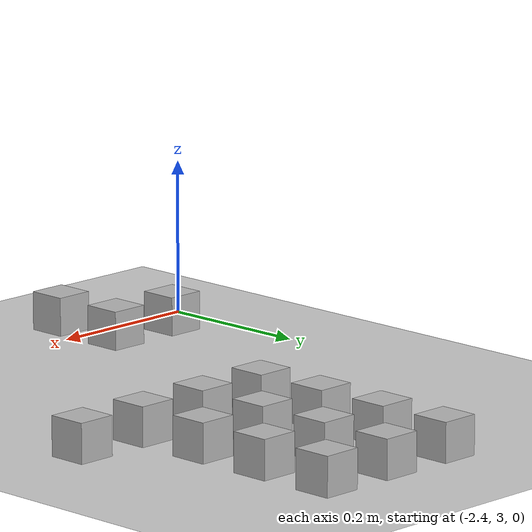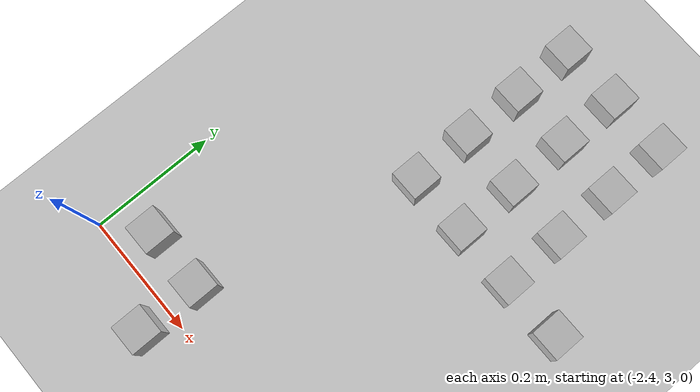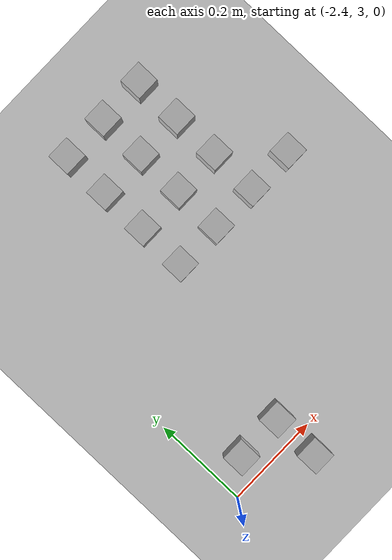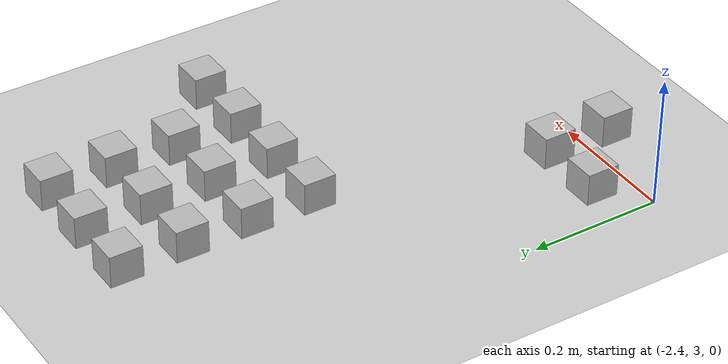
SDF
<sdf version="1.6">
 <world name="default">
  <model name="ground_plane">
   <static>1</static>
   <link name="link">
    <collision name="collision">
     <geometry><plane><normal>0 0 1</normal><size>100 100</size></plane></geometry>
     <surface><friction><ode><mu>100</mu><mu2>50</mu2></ode></friction></surface>
    </collision>
    <visual name="visual">
     <cast_shadows>0</cast_shadows>
     <geometry><plane><normal>0 0 1</normal><size>100 100</size></plane></geometry>
     <material>
      <script><uri>file://media/materials/scripts/gazebo.material</uri><name>Gazebo/Grey</name></script>
     </material>
    </visual>
   </link>
  </model>
  <model name="at32">
   <static>0</static>
   <link name="link">
    <inertial>
     <mass>0.01</mass>
     <inertia><ixx>4e-05</ixx><ixy>0</ixy><ixz>0</ixz><iyy>4e-05</iyy><iyz>0</iyz><izz>4e-05</izz></inertia>
    </inertial>
    <visual name="visual">
     <geometry><box><size>0.05 0.05 0.05</size></box></geometry>
     <material>
      <script>
       <uri>model://at0/materials/scripts</uri>
       <uri>model://at0/materials/textures</uri>
       <name>at0/Diffuse</name>
      </script>
     </material>
    </visual>
    <collision name="collision">
     <geometry><box><size>0.05 0.05 0.05</size></box></geometry>
     <surface><friction><ode><mu>0.8</mu><mu2>0.7</mu2></ode></friction></surface>
    </collision>
   </link>
   <pose>-2.14382 3.39828 0.025 0 -0 0</pose>
  </model>
  <model name="at33">
   <static>0</static>
   <link name="link">
    <inertial>
     <mass>0.01</mass>
     <inertia><ixx>4e-05</ixx><ixy>0</ixy><ixz>0</ixz><iyy>4e-05</iyy><iyz>0</iyz><izz>4e-05</izz></inertia>
    </inertial>
    <visual name="visual">
     <geometry><box><size>0.05 0.05 0.05</size></box></geometry>
     <material>
      <script>
       <uri>model://at0/materials/scripts</uri>
       <uri>model://at0/materials/textures</uri>
       <name>at0/Diffuse</name>
      </script>
     </material>
    </visual>
    <collision name="collision">
     <geometry><box><size>0.05 0.05 0.05</size></box></geometry>
     <surface><friction><ode><mu>0.8</mu><mu2>0.7</mu2></ode></friction></surface>
    </collision>
   </link>
   <pose>-2.04382 3.39828 0.025 0 -0 0</pose>
  </model>
  <model name="at34">
   <static>0</static>
   <link name="link">
    <inertial>
     <mass>0.01</mass>
     <inertia><ixx>4e-05</ixx><ixy>0</ixy><ixz>0</ixz><iyy>4e-05</iyy><iyz>0</iyz><izz>4e-05</izz></inertia>
    </inertial>
    <visual name="visual">
     <geometry><box><size>0.05 0.05 0.05</size></box></geometry>
     <material>
      <script>
       <uri>model://at0/materials/scripts</uri>
       <uri>model://at0/materials/textures</uri>
       <name>at0/Diffuse</name>
      </script>
     </material>
    </visual>
    <collision name="collision">
     <geometry><box><size>0.05 0.05 0.05</size></box></geometry>
     <surface><friction><ode><mu>0.8</mu><mu2>0.7</mu2></ode></friction></surface>
    </collision>
   </link>
   <pose>-1.94382 3.39828 0.025 0 -0 0</pose>
  </model>
  <model name="at35">
   <static>0</static>
   <link name="link">
    <inertial>
     <mass>0.01</mass>
     <inertia><ixx>4e-05</ixx><ixy>0</ixy><ixz>0</ixz><iyy>4e-05</iyy><iyz>0</iyz><izz>4e-05</izz></inertia>
    </inertial>
    <visual name="visual">
     <geometry><box><size>0.05 0.05 0.05</size></box></geometry>
     <material>
      <script>
       <uri>model://at0/materials/scripts</uri>
       <uri>model://at0/materials/textures</uri>
       <name>at0/Diffuse</name>
      </script>
     </material>
    </visual>
    <collision name="collision">
     <geometry><box><size>0.05 0.05 0.05</size></box></geometry>
     <surface><friction><ode><mu>0.8</mu><mu2>0.7</mu2></ode></friction></surface>
    </collision>
   </link>
   <pose>-1.84382 3.39828 0.025 0 -0 0</pose>
  </model>
  <model name="at36">
   <static>0</static>
   <link name="link">
    <inertial>
     <mass>0.01</mass>
     <inertia><ixx>4e-05</ixx><ixy>0</ixy><ixz>0</ixz><iyy>4e-05</iyy><iyz>0</iyz><izz>4e-05</izz></inertia>
    </inertial>
    <visual name="visual">
     <geometry><box><size>0.05 0.05 0.05</size></box></geometry>
     <material>
      <script>
       <uri>model://at0/materials/scripts</uri>
       <uri>model://at0/materials/textures</uri>
       <name>at0/Diffuse</name>
      </script>
     </material>
    </visual>
    <collision name="collision">
     <geometry><box><size>0.05 0.05 0.05</size></box></geometry>
     <surface><friction><ode><mu>0.8</mu><mu2>0.7</mu2></ode></friction></surface>
    </collision>
   </link>
   <pose>-2.14382 3.49828 0.025 0 -0 0</pose>
  </model>
  <model name="at37">
   <static>0</static>
   <link name="link">
    <inertial>
     <mass>0.01</mass>
     <inertia><ixx>4e-05</ixx><ixy>0</ixy><ixz>0</ixz><iyy>4e-05</iyy><iyz>0</iyz><izz>4e-05</izz></inertia>
    </inertial>
    <visual name="visual">
     <geometry><box><size>0.05 0.05 0.05</size></box></geometry>
     <material>
      <script>
       <uri>model://at0/materials/scripts</uri>
       <uri>model://at0/materials/textures</uri>
       <name>at0/Diffuse</name>
      </script>
     </material>
    </visual>
    <collision name="collision">
     <geometry><box><size>0.05 0.05 0.05</size></box></geometry>
     <surface><friction><ode><mu>0.8</mu><mu2>0.7</mu2></ode></friction></surface>
    </collision>
   </link>
   <pose>-2.04382 3.49828 0.025 0 -0 0</pose>
  </model>
  <model name="at38">
   <static>0</static>
   <link name="link">
    <inertial>
     <mass>0.01</mass>
     <inertia><ixx>4e-05</ixx><ixy>0</ixy><ixz>0</ixz><iyy>4e-05</iyy><iyz>0</iyz><izz>4e-05</izz></inertia>
    </inertial>
    <visual name="visual">
     <geometry><box><size>0.05 0.05 0.05</size></box></geometry>
     <material>
      <script>
       <uri>model://at0/materials/scripts</uri>
       <uri>model://at0/materials/textures</uri>
       <name>at0/Diffuse</name>
      </script>
     </material>
    </visual>
    <collision name="collision">
     <geometry><box><size>0.05 0.05 0.05</size></box></geometry>
     <surface><friction><ode><mu>0.8</mu><mu2>0.7</mu2></ode></friction></surface>
    </collision>
   </link>
   <pose>-1.94382 3.49828 0.025 0 -0 0</pose>
  </model>
  <model name="at40">
   <static>0</static>
   <link name="link">
    <inertial>
     <mass>0.01</mass>
     <inertia><ixx>4e-05</ixx><ixy>0</ixy><ixz>0</ixz><iyy>4e-05</iyy><iyz>0</iyz><izz>4e-05</izz></inertia>
    </inertial>
    <visual name="visual">
     <geometry><box><size>0.05 0.05 0.05</size></box></geometry>
     <material>
      <script>
       <uri>model://at0/materials/scripts</uri>
       <uri>model://at0/materials/textures</uri>
       <name>at0/Diffuse</name>
      </script>
     </material>
    </visual>
    <collision name="collision">
     <geometry><box><size>0.05 0.05 0.05</size></box></geometry>
     <surface><friction><ode><mu>0.8</mu><mu2>0.7</mu2></ode></friction></surface>
    </collision>
   </link>
   <pose>-2.14382 3.59828 0.025 0 -0 0</pose>
  </model>
  <model name="at41">
   <static>0</static>
   <link name="link">
    <inertial>
     <mass>0.01</mass>
     <inertia><ixx>4e-05</ixx><ixy>0</ixy><ixz>0</ixz><iyy>4e-05</iyy><iyz>0</iyz><izz>4e-05</izz></inertia>
    </inertial>
    <visual name="visual">
     <geometry><box><size>0.05 0.05 0.05</size></box></geometry>
     <material>
      <script>
       <uri>model://at0/materials/scripts</uri>
       <uri>model://at0/materials/textures</uri>
       <name>at0/Diffuse</name>
      </script>
     </material>
    </visual>
    <collision name="collision">
     <geometry><box><size>0.05 0.05 0.05</size></box></geometry>
     <surface><friction><ode><mu>0.8</mu><mu2>0.7</mu2></ode></friction></surface>
    </collision>
   </link>
   <pose>-2.04382 3.59828 0.025 0 -0 0</pose>
  </model>
  <model name="at42">
   <static>0</static>
   <link name="link">
    <inertial>
     <mass>0.01</mass>
     <inertia><ixx>4e-05</ixx><ixy>0</ixy><ixz>0</ixz><iyy>4e-05</iyy><iyz>0</iyz><izz>4e-05</izz></inertia>
    </inertial>
    <visual name="visual">
     <geometry><box><size>0.05 0.05 0.05</size></box></geometry>
     <material>
      <script>
       <uri>model://at0/materials/scripts</uri>
       <uri>model://at0/materials/textures</uri>
       <name>at0/Diffuse</name>
      </script>
     </material>
    </visual>
    <collision name="collision">
     <geometry><box><size>0.05 0.05 0.05</size></box></geometry>
     <surface><friction><ode><mu>0.8</mu><mu2>0.7</mu2></ode></friction></surface>
    </collision>
   </link>
   <pose>-1.94382 3.59828 0.025 0 -0 0</pose>
  </model>
  <model name="at44">
   <static>0</static>
   <link name="link">
    <inertial>
     <mass>0.01</mass>
     <inertia><ixx>4e-05</ixx><ixy>0</ixy><ixz>0</ixz><iyy>4e-05</iyy><iyz>0</iyz><izz>4e-05</izz></inertia>
    </inertial>
    <visual name="visual">
     <geometry><box><size>0.05 0.05 0.05</size></box></geometry>
     <material>
      <script>
       <uri>model://at0/materials/scripts</uri>
       <uri>model://at0/materials/textures</uri>
       <name>at0/Diffuse</name>
      </script>
     </material>
    </visual>
    <collision name="collision">
     <geometry><box><size>0.05 0.05 0.05</size></box></geometry>
     <surface><friction><ode><mu>0.8</mu><mu2>0.7</mu2></ode></friction></surface>
    </collision>
   </link>
   <pose>-2.14382 3.69828 0.025 0 -0 0</pose>
  </model>
  <model name="at45">
   <static>0</static>
   <link name="link">
    <inertial>
     <mass>0.01</mass>
     <inertia><ixx>4e-05</ixx><ixy>0</ixy><ixz>0</ixz><iyy>4e-05</iyy><iyz>0</iyz><izz>4e-05</izz></inertia>
    </inertial>
    <visual name="visual">
     <geometry><box><size>0.05 0.05 0.05</size></box></geometry>
     <material>
      <script>
       <uri>model://at0/materials/scripts</uri>
       <uri>model://at0/materials/textures</uri>
       <name>at0/Diffuse</name>
      </script>
     </material>
    </visual>
    <collision name="collision">
     <geometry><box><size>0.05 0.05 0.05</size></box></geometry>
     <surface><friction><ode><mu>0.8</mu><mu2>0.7</mu2></ode></friction></surface>
    </collision>
   </link>
   <pose>-2.04382 3.69828 0.025 0 -0 0</pose>
  </model>
  <model name="at46">
   <static>0</static>
   <link name="link">
    <inertial>
     <mass>0.01</mass>
     <inertia><ixx>4e-05</ixx><ixy>0</ixy><ixz>0</ixz><iyy>4e-05</iyy><iyz>0</iyz><izz>4e-05</izz></inertia>
    </inertial>
    <visual name="visual">
     <geometry><box><size>0.05 0.05 0.05</size></box></geometry>
     <material>
      <script>
       <uri>model://at0/materials/scripts</uri>
       <uri>model://at0/materials/textures</uri>
       <name>at0/Diffuse</name>
      </script>
     </material>
    </visual>
    <collision name="collision">
     <geometry><box><size>0.05 0.05 0.05</size></box></geometry>
     <surface><friction><ode><mu>0.8</mu><mu2>0.7</mu2></ode></friction></surface>
    </collision>
   </link>
   <pose>-1.94382 3.69828 0.025 0 -0 0</pose>
  </model>
  <model name="at81">
   <static>0</static>
   <link name="link">
    <inertial>
     <mass>0.01</mass>
     <inertia><ixx>4e-05</ixx><ixy>0</ixy><ixz>0</ixz><iyy>4e-05</iyy><iyz>0</iyz><izz>4e-05</izz></inertia>
    </inertial>
    <visual name="visual">
     <geometry><box><size>0.05 0.05 0.05</size></box></geometry>
     <material>
      <script>
       <uri>model://at0/materials/scripts</uri>
       <uri>model://at0/materials/textures</uri>
       <name>at0/Diffuse</name>
      </script>
     </material>
    </visual>
    <collision name="collision">
     <geometry><box><size>0.05 0.05 0.05</size></box></geometry>
     <surface><friction><ode><mu>0.8</mu><mu2>0.7</mu2></ode></friction></surface>
    </collision>
   </link>
   <pose>-2.23179 2.95711 0.025 0 -0 0</pose>
  </model>
  <model name="at82">
   <static>0</static>
   <link name="link">
    <inertial>
     <mass>0.01</mass>
     <inertia><ixx>4e-05</ixx><ixy>0</ixy><ixz>0</ixz><iyy>4e-05</iyy><iyz>0</iyz><izz>4e-05</izz></inertia>
    </inertial>
    <visual name="visual">
     <geometry><box><size>0.05 0.05 0.05</size></box></geometry>
     <material>
      <script>
       <uri>model://at0/materials/scripts</uri>
       <uri>model://at0/materials/textures</uri>
       <name>at0/Diffuse</name>
      </script>
     </material>
    </visual>
    <collision name="collision">
     <geometry><box><size>0.05 0.05 0.05</size></box></geometry>
     <surface><friction><ode><mu>0.8</mu><mu2>0.7</mu2></ode></friction></surface>
    </collision>
   </link>
   <pose>-2.33179 3.05711 0.025 0 -0 0</pose>
  </model>
  <model name="at83">
   <static>0</static>
   <link name="link">
    <inertial>
     <mass>0.01</mass>
     <inertia><ixx>4e-05</ixx><ixy>0</ixy><ixz>0</ixz><iyy>4e-05</iyy><iyz>0</iyz><izz>4e-05</izz></inertia>
    </inertial>
    <visual name="visual">
     <geometry><box><size>0.05 0.05 0.05</size></box></geometry>
     <material>
      <script>
       <uri>model://at0/materials/scripts</uri>
       <uri>model://at0/materials/textures</uri>
       <name>at0/Diffuse</name>
      </script>
     </material>
    </visual>
    <collision name="collision">
     <geometry><box><size>0.05 0.05 0.05</size></box></geometry>
     <surface><friction><ode><mu>0.8</mu><mu2>0.7</mu2></ode></friction></surface>
    </collision>
   </link>
   <pose>-2.23179 3.05711 0.025 0 -0 0</pose>
  </model>
 </world>
</sdf>
